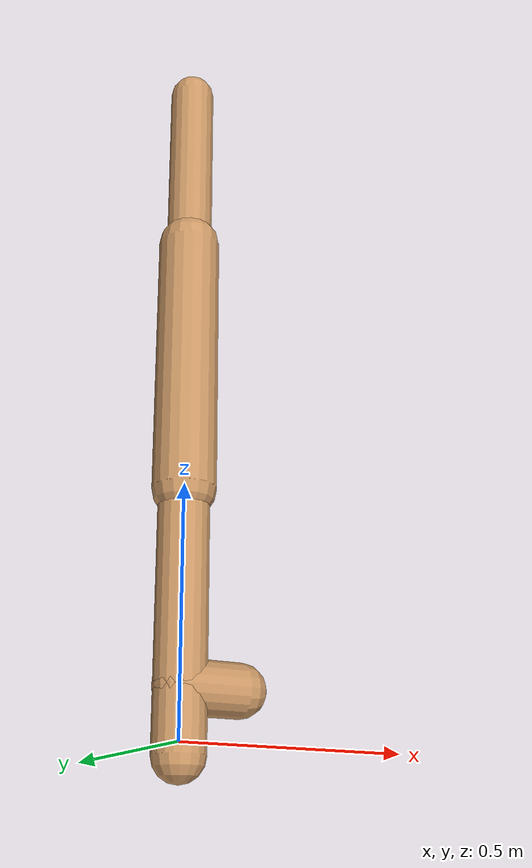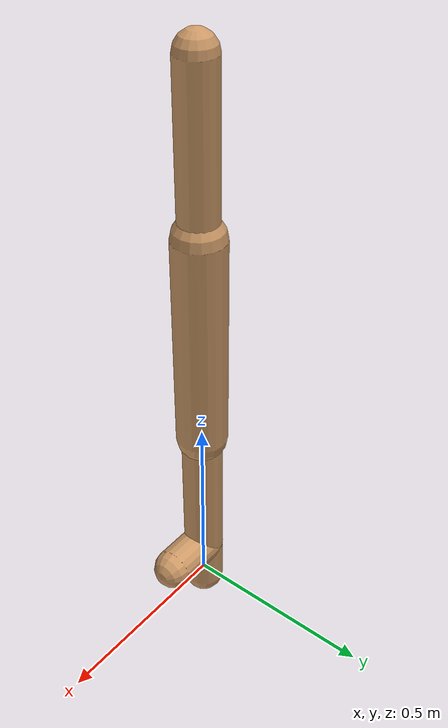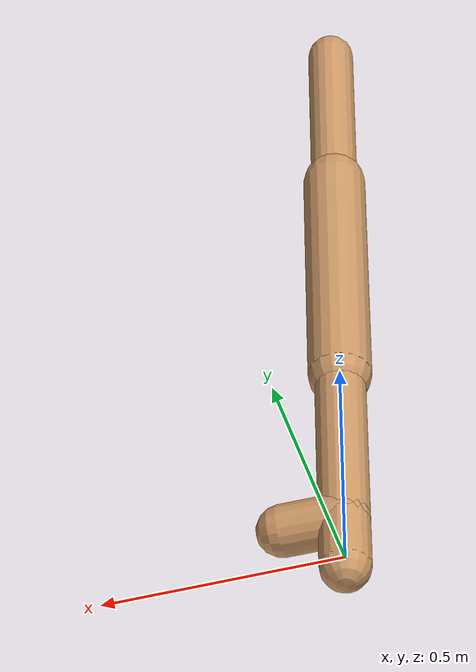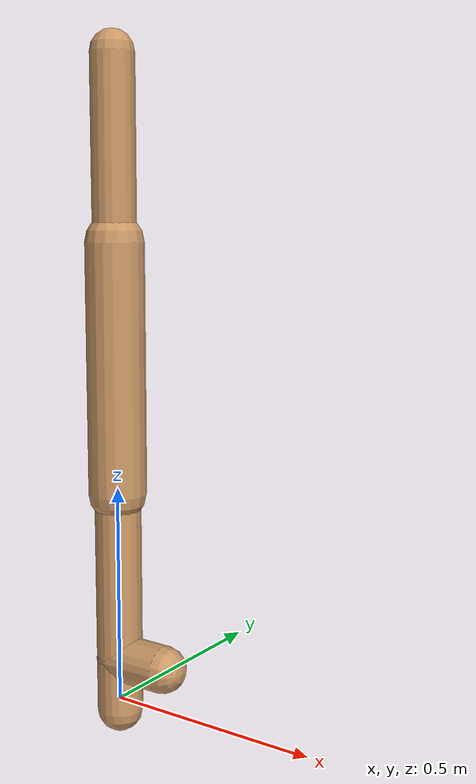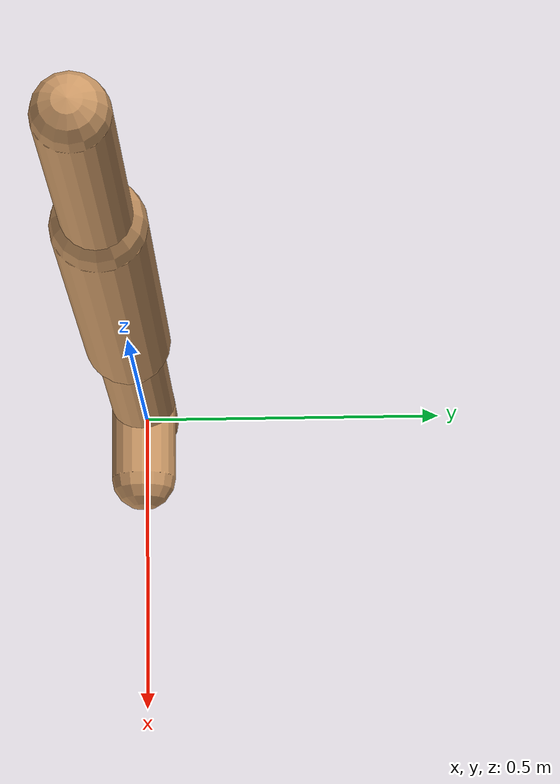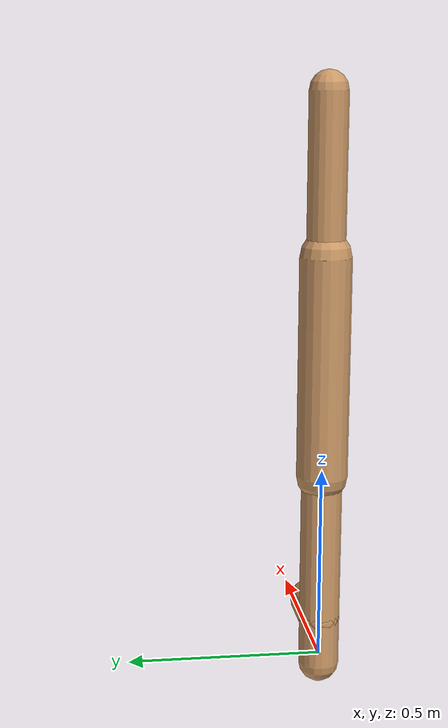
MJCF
<mujoco model="walker2d">
  <compiler angle="degree" coordinate="global" inertiafromgeom="true" />
  <default>
    <joint armature="0.01" damping=".1" limited="true" />
    <geom conaffinity="0" condim="3" contype="1" density="1000" friction="0.8 .1 .1" rgba="0.8 0.6 .4 1" />
  </default>
  <option integrator="RK4" timestep="0.002" />
  <worldbody>

    <body name="torso" pos="0 0 0.23472329193452013">
      <joint armature="0" axis="1 0 0" damping="0" limited="false" name="ignorex" pos="0 0 0" stiffness="0" type="slide" />
      <joint armature="0" axis="0 0 1" damping="0" limited="false" name="ignorez" pos="0 0 0" ref="1.25" stiffness="0" type="slide" />
      <joint armature="0" axis="0 1 0" damping="0" limited="false" name="ignorey" pos="0 0 0" stiffness="0" type="hinge" />
      <geom fromto="0 0 1.45 0 0 1.05" name="torso_geom" size="0.048789732137378125" type="capsule" />
      <body name="thigh">
        <joint axis="0 -1 0" name="thigh_joint" pos="0 0 1.05" range="-150 0" type="hinge" />
        <geom fromto="0.0 0.0 1.05 0.0 0.0 0.48881528276785885" name="thigh_geom" size="0.06561151372158695" type="capsule" />
        <body name="leg" pos="0.0 0.0 -0.11118471723214113">
          <joint axis="0 -1 0" name="leg_joint" pos="0 0 0.6" range="-150 0" type="hinge" />
          <geom fromto="0.0 0.0 0.6 0.0 0.0 -0.023538574702378995" name="leg_geom" size="0.05248921097726956" type="capsule" />
          <body name="foot" pos="0.0 0.0 -0.123538574702379">
            <joint axis="0 -1 0" name="foot_joint" pos="0 0 0.1" range="-45 45" type="hinge" />
            <geom fromto="0.0 0.0 0.1 0.12570804880422518 0.0 0.1" name="foot_geom" size="0.05348059248669739" type="capsule" />
          </body>
        </body>
      </body>

      <body name="thigh_left">
        <joint axis="0 -1 0" name="thigh_left_joint" pos="0 0 1.05" range="-150 0" type="hinge" />
        <geom fromto="0.0 0.0 1.05 0.0 0.0 0.48881528276785885" name="thigh_left_geom" rgba=".7 .3 .6 1" size="0.06561151372158695" type="capsule" />
        <body name="leg_left" pos="0.0 0.0 -0.11118471723214113">
          <joint axis="0 -1 0" name="leg_left_joint" pos="0 0 0.6" range="-150 0" type="hinge" />
          <geom fromto="0.0 0.0 0.6 0.0 0.0 -0.023538574702378995" name="leg_left_geom" rgba=".7 .3 .6 1" size="0.05248921097726956" type="capsule" />
          <body name="foot_left" pos="0.0 0.0 -0.123538574702379">
            <joint axis="0 -1 0" name="foot_left_joint" pos="0 0 0.1" range="-45 45" type="hinge" />
            <geom fromto="0.0 0.0 0.1 0.12570804880422518 0.0 0.1" name="foot_left_geom" rgba=".7 .3 .6 1" size="0.05348059248669739" type="capsule" />
          </body>
        </body>
      </body>
    </body>
  </worldbody>
  <actuator>

    <motor ctrllimited="true" ctrlrange="-1.0 1.0" gear="100" joint="thigh_joint" />
    <motor ctrllimited="true" ctrlrange="-1.0 1.0" gear="100" joint="leg_joint" />
    <motor ctrllimited="true" ctrlrange="-1.0 1.0" gear="100" joint="foot_joint" />
    <motor ctrllimited="true" ctrlrange="-1.0 1.0" gear="100" joint="thigh_left_joint" />
    <motor ctrllimited="true" ctrlrange="-1.0 1.0" gear="100" joint="leg_left_joint" />
    <motor ctrllimited="true" ctrlrange="-1.0 1.0" gear="100" joint="foot_left_joint" />

  </actuator>
</mujoco>
